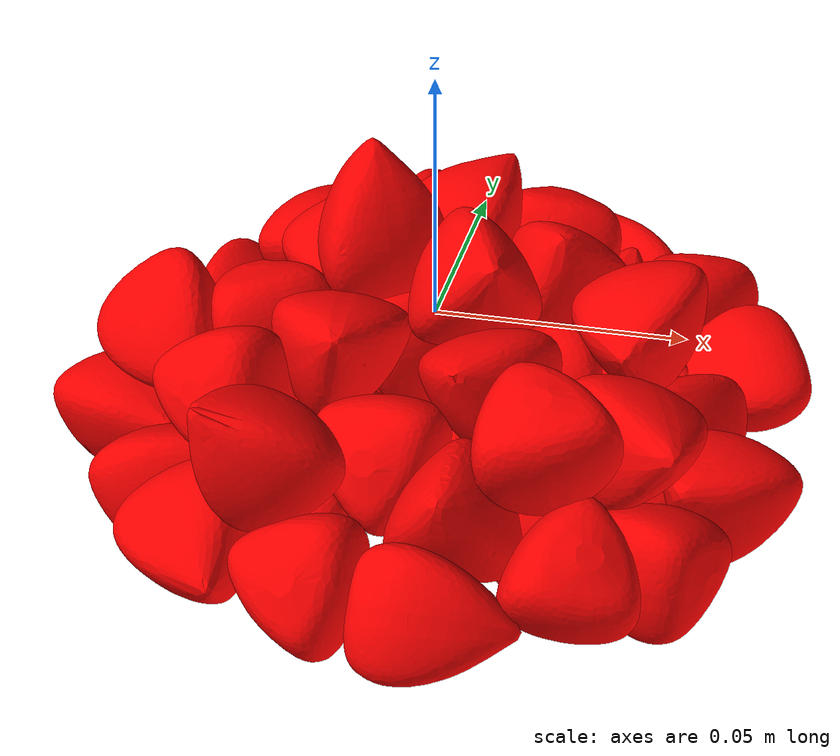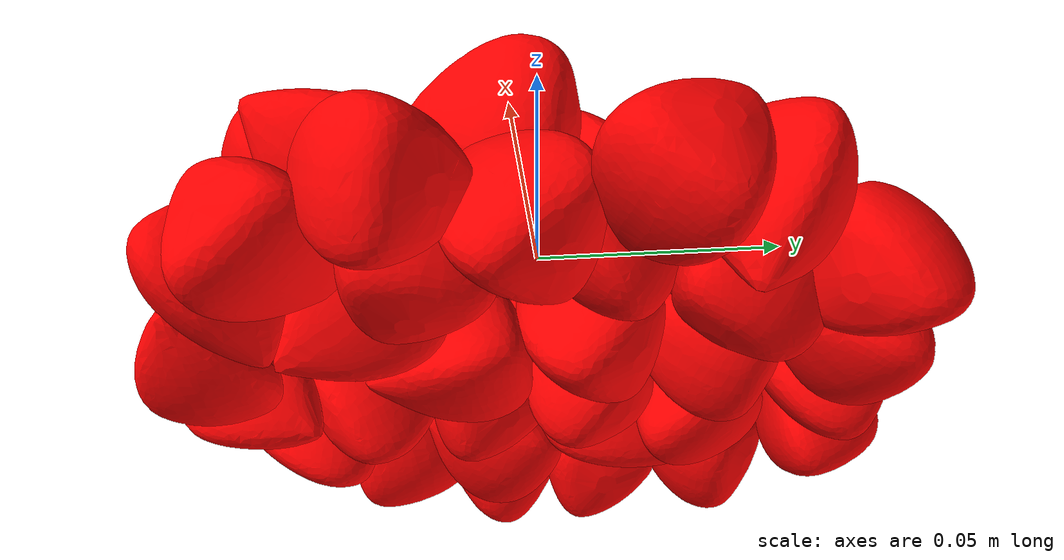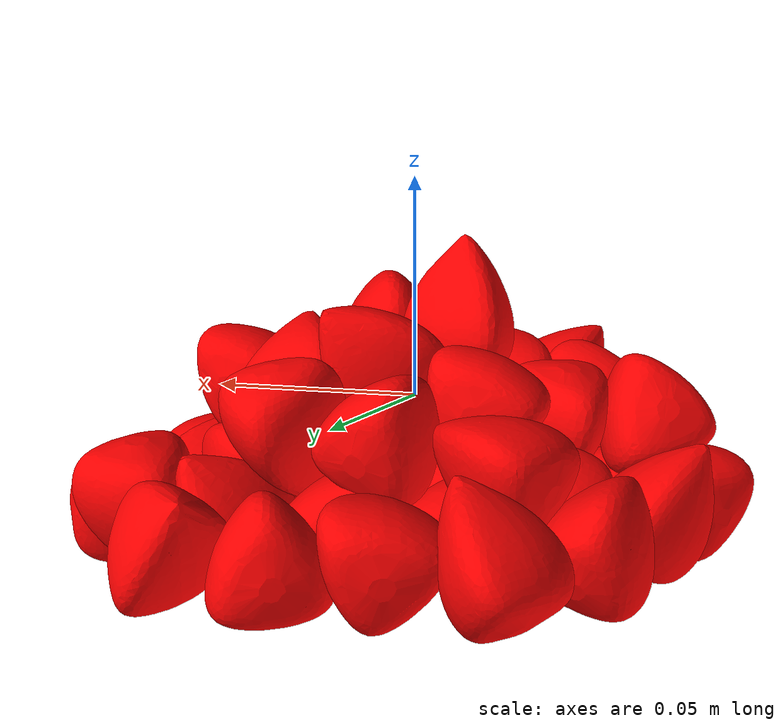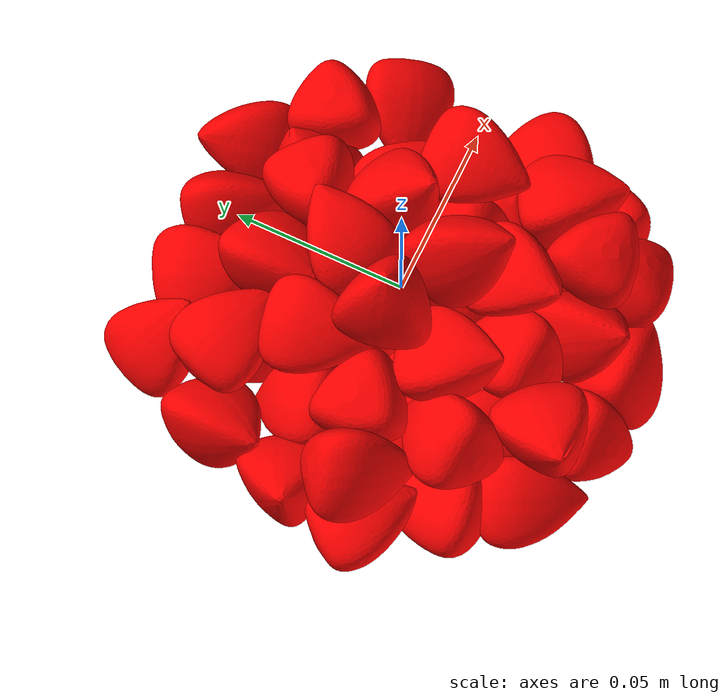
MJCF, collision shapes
<?xml version="1.0" ?>
<mujoco model="grain_buckwheat">
	<compiler meshdir="grain_buckwheat/meshes" texturedir="grain_buckwheat/textures" angle="radian" autolimits="true" balanceinertia="true" boundmass="0.000001" boundinertia="0.000001"/>
	<default>
		<default class="visual">
			<geom contype="0" conaffinity="0"/>
		</default>
		<default class="collision">
			<geom rgba="1.0 0.0 0.0 0.0"/>
		</default>
	</default>
	<asset>
		<mesh name="GrainBuckwheat036" file="obj/GrainBuckwheat036.obj" scale="1.0 1.0 1.0"/>
		<mesh name="GrainBuckwheat036_001" file="stl/GrainBuckwheat036_001.stl" scale="1.0 1.0 1.0"/>
		<mesh name="GrainBuckwheat040" file="obj/GrainBuckwheat040.obj" scale="1.0 1.0 1.0"/>
		<mesh name="GrainBuckwheat040_001" file="stl/GrainBuckwheat040_001.stl" scale="1.0 1.0 1.0"/>
		<mesh name="GrainBuckwheat041" file="obj/GrainBuckwheat041.obj" scale="1.0 1.0 1.0"/>
		<mesh name="GrainBuckwheat041_001" file="stl/GrainBuckwheat041_001.stl" scale="1.0 1.0 1.0"/>
		<mesh name="GrainBuckwheat017" file="obj/GrainBuckwheat017.obj" scale="1.0 1.0 1.0"/>
		<mesh name="GrainBuckwheat017_001" file="stl/GrainBuckwheat017_001.stl" scale="1.0 1.0 1.0"/>
		<mesh name="GrainBuckwheat049" file="obj/GrainBuckwheat049.obj" scale="1.0 1.0 1.0"/>
		<mesh name="GrainBuckwheat049_001" file="stl/GrainBuckwheat049_001.stl" scale="1.0 1.0 1.0"/>
		<mesh name="GrainBuckwheat024" file="obj/GrainBuckwheat024.obj" scale="1.0 1.0 1.0"/>
		<mesh name="GrainBuckwheat024_001" file="stl/GrainBuckwheat024_001.stl" scale="1.0 1.0 1.0"/>
		<mesh name="GrainBuckwheat051" file="obj/GrainBuckwheat051.obj" scale="1.0 1.0 1.0"/>
		<mesh name="GrainBuckwheat051_001" file="stl/GrainBuckwheat051_001.stl" scale="1.0 1.0 1.0"/>
		<mesh name="GrainBuckwheat019" file="obj/GrainBuckwheat019.obj" scale="1.0 1.0 1.0"/>
		<mesh name="GrainBuckwheat019_001" file="stl/GrainBuckwheat019_001.stl" scale="1.0 1.0 1.0"/>
		<mesh name="GrainBuckwheat042" file="obj/GrainBuckwheat042.obj" scale="1.0 1.0 1.0"/>
		<mesh name="GrainBuckwheat042_001" file="stl/GrainBuckwheat042_001.stl" scale="1.0 1.0 1.0"/>
		<mesh name="GrainBuckwheat021" file="obj/GrainBuckwheat021.obj" scale="1.0 1.0 1.0"/>
		<mesh name="GrainBuckwheat021_001" file="stl/GrainBuckwheat021_001.stl" scale="1.0 1.0 1.0"/>
		<mesh name="GrainBuckwheat032" file="obj/GrainBuckwheat032.obj" scale="1.0 1.0 1.0"/>
		<mesh name="GrainBuckwheat032_001" file="stl/GrainBuckwheat032_001.stl" scale="1.0 1.0 1.0"/>
		<mesh name="GrainBuckwheat014" file="obj/GrainBuckwheat014.obj" scale="1.0 1.0 1.0"/>
		<mesh name="GrainBuckwheat014_001" file="stl/GrainBuckwheat014_001.stl" scale="1.0 1.0 1.0"/>
		<mesh name="GrainBuckwheat035" file="obj/GrainBuckwheat035.obj" scale="1.0 1.0 1.0"/>
		<mesh name="GrainBuckwheat035_001" file="stl/GrainBuckwheat035_001.stl" scale="1.0 1.0 1.0"/>
		<mesh name="GrainBuckwheat004" file="obj/GrainBuckwheat004.obj" scale="1.0 1.0 1.0"/>
		<mesh name="GrainBuckwheat004_001" file="stl/GrainBuckwheat004_001.stl" scale="1.0 1.0 1.0"/>
		<mesh name="GrainBuckwheat001" file="obj/GrainBuckwheat001.obj" scale="1.0 1.0 1.0"/>
		<mesh name="GrainBuckwheat001_001" file="stl/GrainBuckwheat001_001.stl" scale="1.0 1.0 1.0"/>
		<mesh name="GrainBuckwheat047" file="obj/GrainBuckwheat047.obj" scale="1.0 1.0 1.0"/>
		<mesh name="GrainBuckwheat047_001" file="stl/GrainBuckwheat047_001.stl" scale="1.0 1.0 1.0"/>
		<mesh name="GrainBuckwheat015" file="obj/GrainBuckwheat015.obj" scale="1.0 1.0 1.0"/>
		<mesh name="GrainBuckwheat015_001" file="stl/GrainBuckwheat015_001.stl" scale="1.0 1.0 1.0"/>
		<mesh name="GrainBuckwheat038" file="obj/GrainBuckwheat038.obj" scale="1.0 1.0 1.0"/>
		<mesh name="GrainBuckwheat038_001" file="stl/GrainBuckwheat038_001.stl" scale="1.0 1.0 1.0"/>
		<mesh name="GrainBuckwheat045" file="obj/GrainBuckwheat045.obj" scale="1.0 1.0 1.0"/>
		<mesh name="GrainBuckwheat045_001" file="stl/GrainBuckwheat045_001.stl" scale="1.0 1.0 1.0"/>
		<mesh name="GrainBuckwheat050" file="obj/GrainBuckwheat050.obj" scale="1.0 1.0 1.0"/>
		<mesh name="GrainBuckwheat050_001" file="stl/GrainBuckwheat050_001.stl" scale="1.0 1.0 1.0"/>
		<mesh name="GrainBuckwheat009" file="obj/GrainBuckwheat009.obj" scale="1.0 1.0 1.0"/>
		<mesh name="GrainBuckwheat009_001" file="stl/GrainBuckwheat009_001.stl" scale="1.0 1.0 1.0"/>
		<mesh name="GrainBuckwheat006" file="obj/GrainBuckwheat006.obj" scale="1.0 1.0 1.0"/>
		<mesh name="GrainBuckwheat006_001" file="stl/GrainBuckwheat006_001.stl" scale="1.0 1.0 1.0"/>
		<mesh name="GrainBuckwheat048" file="obj/GrainBuckwheat048.obj" scale="1.0 1.0 1.0"/>
		<mesh name="GrainBuckwheat048_001" file="stl/GrainBuckwheat048_001.stl" scale="1.0 1.0 1.0"/>
		<mesh name="GrainBuckwheat011" file="obj/GrainBuckwheat011.obj" scale="1.0 1.0 1.0"/>
		<mesh name="GrainBuckwheat011_001" file="stl/GrainBuckwheat011_001.stl" scale="1.0 1.0 1.0"/>
		<mesh name="GrainBuckwheat005" file="obj/GrainBuckwheat005.obj" scale="1.0 1.0 1.0"/>
		<mesh name="GrainBuckwheat005_001" file="stl/GrainBuckwheat005_001.stl" scale="1.0 1.0 1.0"/>
		<mesh name="GrainBuckwheat008" file="obj/GrainBuckwheat008.obj" scale="1.0 1.0 1.0"/>
		<mesh name="GrainBuckwheat008_001" file="stl/GrainBuckwheat008_001.stl" scale="1.0 1.0 1.0"/>
		<mesh name="GrainBuckwheat037" file="obj/GrainBuckwheat037.obj" scale="1.0 1.0 1.0"/>
		<mesh name="GrainBuckwheat037_001" file="stl/GrainBuckwheat037_001.stl" scale="1.0 1.0 1.0"/>
		<mesh name="GrainBuckwheat039" file="obj/GrainBuckwheat039.obj" scale="1.0 1.0 1.0"/>
		<mesh name="GrainBuckwheat039_001" file="stl/GrainBuckwheat039_001.stl" scale="1.0 1.0 1.0"/>
		<mesh name="GrainBuckwheat023" file="obj/GrainBuckwheat023.obj" scale="1.0 1.0 1.0"/>
		<mesh name="GrainBuckwheat023_001" file="stl/GrainBuckwheat023_001.stl" scale="1.0 1.0 1.0"/>
		<mesh name="GrainBuckwheat018" file="obj/GrainBuckwheat018.obj" scale="1.0 1.0 1.0"/>
		<mesh name="GrainBuckwheat018_001" file="stl/GrainBuckwheat018_001.stl" scale="1.0 1.0 1.0"/>
		<mesh name="GrainBuckwheat002" file="obj/GrainBuckwheat002.obj" scale="1.0 1.0 1.0"/>
		<mesh name="GrainBuckwheat002_001" file="stl/GrainBuckwheat002_001.stl" scale="1.0 1.0 1.0"/>
		<mesh name="GrainBuckwheat025" file="obj/GrainBuckwheat025.obj" scale="1.0 1.0 1.0"/>
		<mesh name="GrainBuckwheat025_001" file="stl/GrainBuckwheat025_001.stl" scale="1.0 1.0 1.0"/>
		<mesh name="GrainBuckwheat043" file="obj/GrainBuckwheat043.obj" scale="1.0 1.0 1.0"/>
		<mesh name="GrainBuckwheat043_001" file="stl/GrainBuckwheat043_001.stl" scale="1.0 1.0 1.0"/>
		<mesh name="GrainBuckwheat031" file="obj/GrainBuckwheat031.obj" scale="1.0 1.0 1.0"/>
		<mesh name="GrainBuckwheat031_001" file="stl/GrainBuckwheat031_001.stl" scale="1.0 1.0 1.0"/>
		<mesh name="GrainBuckwheat003" file="obj/GrainBuckwheat003.obj" scale="1.0 1.0 1.0"/>
		<mesh name="GrainBuckwheat003_001" file="stl/GrainBuckwheat003_001.stl" scale="1.0 1.0 1.0"/>
		<mesh name="GrainBuckwheat016" file="obj/GrainBuckwheat016.obj" scale="1.0 1.0 1.0"/>
		<mesh name="GrainBuckwheat016_001" file="stl/GrainBuckwheat016_001.stl" scale="1.0 1.0 1.0"/>
		<mesh name="GrainBuckwheat007" file="obj/GrainBuckwheat007.obj" scale="1.0 1.0 1.0"/>
		<mesh name="GrainBuckwheat007_001" file="stl/GrainBuckwheat007_001.stl" scale="1.0 1.0 1.0"/>
		<mesh name="GrainBuckwheat022" file="obj/GrainBuckwheat022.obj" scale="1.0 1.0 1.0"/>
		<mesh name="GrainBuckwheat022_001" file="stl/GrainBuckwheat022_001.stl" scale="1.0 1.0 1.0"/>
		<mesh name="GrainBuckwheat013" file="obj/GrainBuckwheat013.obj" scale="1.0 1.0 1.0"/>
		<mesh name="GrainBuckwheat013_001" file="stl/GrainBuckwheat013_001.stl" scale="1.0 1.0 1.0"/>
		<mesh name="GrainBuckwheat028" file="obj/GrainBuckwheat028.obj" scale="1.0 1.0 1.0"/>
		<mesh name="GrainBuckwheat028_001" file="stl/GrainBuckwheat028_001.stl" scale="1.0 1.0 1.0"/>
		<mesh name="GrainBuckwheat026" file="obj/GrainBuckwheat026.obj" scale="1.0 1.0 1.0"/>
		<mesh name="GrainBuckwheat026_001" file="stl/GrainBuckwheat026_001.stl" scale="1.0 1.0 1.0"/>
		<mesh name="GrainBuckwheat010" file="obj/GrainBuckwheat010.obj" scale="1.0 1.0 1.0"/>
		<mesh name="GrainBuckwheat010_001" file="stl/GrainBuckwheat010_001.stl" scale="1.0 1.0 1.0"/>
		<mesh name="GrainBuckwheat033" file="obj/GrainBuckwheat033.obj" scale="1.0 1.0 1.0"/>
		<mesh name="GrainBuckwheat033_001" file="stl/GrainBuckwheat033_001.stl" scale="1.0 1.0 1.0"/>
		<mesh name="GrainBuckwheat044" file="obj/GrainBuckwheat044.obj" scale="1.0 1.0 1.0"/>
		<mesh name="GrainBuckwheat044_001" file="stl/GrainBuckwheat044_001.stl" scale="1.0 1.0 1.0"/>
		<mesh name="GrainBuckwheat046" file="obj/GrainBuckwheat046.obj" scale="1.0 1.0 1.0"/>
		<mesh name="GrainBuckwheat046_001" file="stl/GrainBuckwheat046_001.stl" scale="1.0 1.0 1.0"/>
		<mesh name="GrainBuckwheat012" file="obj/GrainBuckwheat012.obj" scale="1.0 1.0 1.0"/>
		<mesh name="GrainBuckwheat012_001" file="stl/GrainBuckwheat012_001.stl" scale="1.0 1.0 1.0"/>
		<mesh name="GrainBuckwheat030" file="obj/GrainBuckwheat030.obj" scale="1.0 1.0 1.0"/>
		<mesh name="GrainBuckwheat030_001" file="stl/GrainBuckwheat030_001.stl" scale="1.0 1.0 1.0"/>
		<mesh name="GrainBuckwheat020" file="obj/GrainBuckwheat020.obj" scale="1.0 1.0 1.0"/>
		<mesh name="GrainBuckwheat020_001" file="stl/GrainBuckwheat020_001.stl" scale="1.0 1.0 1.0"/>
		<mesh name="GrainBuckwheat029" file="obj/GrainBuckwheat029.obj" scale="1.0 1.0 1.0"/>
		<mesh name="GrainBuckwheat029_001" file="stl/GrainBuckwheat029_001.stl" scale="1.0 1.0 1.0"/>
		<mesh name="GrainBuckwheat034" file="obj/GrainBuckwheat034.obj" scale="1.0 1.0 1.0"/>
		<mesh name="GrainBuckwheat034_001" file="stl/GrainBuckwheat034_001.stl" scale="1.0 1.0 1.0"/>
		<mesh name="GrainBuckwheat027" file="obj/GrainBuckwheat027.obj" scale="1.0 1.0 1.0"/>
		<mesh name="GrainBuckwheat027_001" file="stl/GrainBuckwheat027_001.stl" scale="1.0 1.0 1.0"/>
		<material name="M_GrainBuckwheat051_035" texture="T_GrainBuckwheat051"/>
		<material name="M_GrainBuckwheat051_039" texture="T_GrainBuckwheat051"/>
		<material name="M_GrainBuckwheat051_040" texture="T_GrainBuckwheat051"/>
		<material name="M_GrainBuckwheat051_016" texture="T_GrainBuckwheat051"/>
		<material name="M_GrainBuckwheat051_048" texture="T_GrainBuckwheat051"/>
		<material name="M_GrainBuckwheat051_023" texture="T_GrainBuckwheat051"/>
		<material name="M_GrainBuckwheat051_050" texture="T_GrainBuckwheat051"/>
		<material name="M_GrainBuckwheat051_018" texture="T_GrainBuckwheat051"/>
		<material name="M_GrainBuckwheat051_041" texture="T_GrainBuckwheat051"/>
		<material name="M_GrainBuckwheat051_020" texture="T_GrainBuckwheat051"/>
		<material name="M_GrainBuckwheat051_031" texture="T_GrainBuckwheat051"/>
		<material name="M_GrainBuckwheat051_013" texture="T_GrainBuckwheat051"/>
		<material name="M_GrainBuckwheat051_034" texture="T_GrainBuckwheat051"/>
		<material name="M_GrainBuckwheat051_003" texture="T_GrainBuckwheat051"/>
		<material name="M_GrainBuckwheat051" texture="T_GrainBuckwheat051"/>
		<material name="M_GrainBuckwheat051_046" texture="T_GrainBuckwheat051"/>
		<material name="M_GrainBuckwheat051_014" texture="T_GrainBuckwheat051"/>
		<material name="M_GrainBuckwheat051_037" texture="T_GrainBuckwheat051"/>
		<material name="M_GrainBuckwheat051_044" texture="T_GrainBuckwheat051"/>
		<material name="M_GrainBuckwheat051_049" texture="T_GrainBuckwheat051"/>
		<material name="M_GrainBuckwheat051_008" texture="T_GrainBuckwheat051"/>
		<material name="M_GrainBuckwheat051_005" texture="T_GrainBuckwheat051"/>
		<material name="M_GrainBuckwheat051_047" texture="T_GrainBuckwheat051"/>
		<material name="M_GrainBuckwheat051_010" texture="T_GrainBuckwheat051"/>
		<material name="M_GrainBuckwheat051_004" texture="T_GrainBuckwheat051"/>
		<material name="M_GrainBuckwheat051_007" texture="T_GrainBuckwheat051"/>
		<material name="M_GrainBuckwheat051_036" texture="T_GrainBuckwheat051"/>
		<material name="M_GrainBuckwheat051_038" texture="T_GrainBuckwheat051"/>
		<material name="M_GrainBuckwheat051_022" texture="T_GrainBuckwheat051"/>
		<material name="M_GrainBuckwheat051_017" texture="T_GrainBuckwheat051"/>
		<material name="M_GrainBuckwheat051_001" texture="T_GrainBuckwheat051"/>
		<material name="M_GrainBuckwheat051_024" texture="T_GrainBuckwheat051"/>
		<material name="M_GrainBuckwheat051_042" texture="T_GrainBuckwheat051"/>
		<material name="M_GrainBuckwheat051_030" texture="T_GrainBuckwheat051"/>
		<material name="M_GrainBuckwheat051_002" texture="T_GrainBuckwheat051"/>
		<material name="M_GrainBuckwheat051_015" texture="T_GrainBuckwheat051"/>
		<material name="M_GrainBuckwheat051_006" texture="T_GrainBuckwheat051"/>
		<material name="M_GrainBuckwheat051_021" texture="T_GrainBuckwheat051"/>
		<material name="M_GrainBuckwheat051_012" texture="T_GrainBuckwheat051"/>
		<material name="M_GrainBuckwheat051_027" texture="T_GrainBuckwheat051"/>
		<material name="M_GrainBuckwheat051_025" texture="T_GrainBuckwheat051"/>
		<material name="M_GrainBuckwheat051_009" texture="T_GrainBuckwheat051"/>
		<material name="M_GrainBuckwheat051_032" texture="T_GrainBuckwheat051"/>
		<material name="M_GrainBuckwheat051_043" texture="T_GrainBuckwheat051"/>
		<material name="M_GrainBuckwheat051_045" texture="T_GrainBuckwheat051"/>
		<material name="M_GrainBuckwheat051_011" texture="T_GrainBuckwheat051"/>
		<material name="M_GrainBuckwheat051_029" texture="T_GrainBuckwheat051"/>
		<material name="M_GrainBuckwheat051_019" texture="T_GrainBuckwheat051"/>
		<material name="M_GrainBuckwheat051_028" texture="T_GrainBuckwheat051"/>
		<material name="M_GrainBuckwheat051_033" texture="T_GrainBuckwheat051"/>
		<material name="M_GrainBuckwheat051_026" texture="T_GrainBuckwheat051"/>
		<texture name="T_GrainBuckwheat051" type="2d" file="T_GrainBuckwheat051.png"/>
	</asset>
	<worldbody>
		<body name="grain_buckwheat" pos="0.0 0.0 0.0" quat="1.0 0.0 0.0 0.0">
			<body name="grain_buckwheat036" pos="0.0 0.0 0.0" quat="1.0 0.0 0.0 0.0">
				<inertial mass="0.008105949498713017" pos="0.002045366680249572 0.017098860815167427 0.009588130749762058" quat="0.6063151955604553 -0.2742525339126587 0.6036592125892639 -0.43904781341552734" diaginertia="5.207304525356449e-07 3.7398126551124733e-06 3.7558399981207913e-06"/>
				<geom name="GrainBuckwheat036" type="mesh" pos="0.0 0.0 0.0" quat="1.0 0.0 0.0 0.0" mesh="GrainBuckwheat036" material="M_GrainBuckwheat051_035" class="visual"/>
				<geom name="GrainBuckwheat036_001" type="mesh" pos="0.0 0.0 0.0" quat="1.0 0.0 0.0 0.0" mesh="GrainBuckwheat036_001" class="collision"/>
			</body>
			<body name="grain_buckwheat041" pos="0.0 0.0 0.0" quat="1.0 0.0 0.0 0.0">
				<inertial mass="0.008105945773422718" pos="0.016430174931883812 -0.026166731491684914 0.0004604462010320276" quat="-0.15355660021305084 0.4604199528694153 0.822814404964447 -0.29565227031707764" diaginertia="5.648936962643347e-07 8.276318112621084e-06 8.357154911209363e-06"/>
				<geom name="GrainBuckwheat041" type="mesh" pos="0.0 0.0 0.0" quat="1.0 0.0 0.0 0.0" mesh="GrainBuckwheat041" material="M_GrainBuckwheat051_040" class="visual"/>
				<geom name="GrainBuckwheat041_001" type="mesh" pos="0.0 0.0 0.0" quat="1.0 0.0 0.0 0.0" mesh="GrainBuckwheat041_001" class="collision"/>
			</body>
			<body name="grain_buckwheat049" pos="0.0 0.0 0.0" quat="1.0 0.0 0.0 0.0">
				<inertial mass="0.00810594018548727" pos="0.043939653784036636 -0.029685627669095993 -0.005284047685563564" quat="0.9296882748603821 -0.2184031456708908 0.11647018045186996 -0.2727901041507721" diaginertia="5.380534275900573e-07 2.359003156016115e-05 2.3629507268196903e-05"/>
				<geom name="GrainBuckwheat049" type="mesh" pos="0.0 0.0 0.0" quat="1.0 0.0 0.0 0.0" mesh="GrainBuckwheat049" material="M_GrainBuckwheat051_048" class="visual"/>
				<geom name="GrainBuckwheat049_001" type="mesh" pos="0.0 0.0 0.0" quat="1.0 0.0 0.0 0.0" mesh="GrainBuckwheat049_001" class="collision"/>
			</body>
			<body name="grain_buckwheat051" pos="0.0 0.0 0.0" quat="1.0 0.0 0.0 0.0">
				<inertial mass="0.008105947636067867" pos="-0.052226465195417404 -0.009263415820896626 -0.004320839885622263" quat="0.9737453460693359 0.20652884244918823 -0.021893210709095 0.09320162236690521" diaginertia="6.010953370605421e-07 2.347497684240807e-05 2.355565629841294e-05"/>
				<geom name="GrainBuckwheat051" type="mesh" pos="0.0 0.0 0.0" quat="1.0 0.0 0.0 0.0" mesh="GrainBuckwheat051" material="M_GrainBuckwheat051_050" class="visual"/>
				<geom name="GrainBuckwheat051_001" type="mesh" pos="0.0 0.0 0.0" quat="1.0 0.0 0.0 0.0" mesh="GrainBuckwheat051_001" class="collision"/>
			</body>
			<body name="grain_buckwheat042" pos="0.0 0.0 0.0" quat="1.0 0.0 0.0 0.0">
				<inertial mass="0.00810594018548727" pos="-0.006528912577778101 0.037082236260175705 -0.002959451638162136" quat="0.5814504027366638 0.2770678400993347 0.38417452573776245 0.6614822745323181" diaginertia="5.237760092313692e-07 1.2138609235989861e-05 1.2181763850094285e-05"/>
				<geom name="GrainBuckwheat042" type="mesh" pos="0.0 0.0 0.0" quat="1.0 0.0 0.0 0.0" mesh="GrainBuckwheat042" material="M_GrainBuckwheat051_041" class="visual"/>
				<geom name="GrainBuckwheat042_001" type="mesh" pos="0.0 0.0 0.0" quat="1.0 0.0 0.0 0.0" mesh="GrainBuckwheat042_001" class="collision"/>
			</body>
			<body name="grain_buckwheat032" pos="0.0 0.0 0.0" quat="1.0 0.0 0.0 0.0">
				<inertial mass="0.00810594204813242" pos="-0.010173884220421314 -0.06007910519838333 -0.024026038125157356" quat="0.5690904259681702 -0.3139033615589142 0.5873298048973083 -0.48233234882354736" diaginertia="5.687700195267098e-07 3.5309272789163515e-05 3.5393371945247054e-05"/>
				<geom name="GrainBuckwheat032" type="mesh" pos="0.0 0.0 0.0" quat="1.0 0.0 0.0 0.0" mesh="GrainBuckwheat032" material="M_GrainBuckwheat051_031" class="visual"/>
				<geom name="GrainBuckwheat032_001" type="mesh" pos="0.0 0.0 0.0" quat="1.0 0.0 0.0 0.0" mesh="GrainBuckwheat032_001" class="collision"/>
			</body>
			<body name="grain_buckwheat035" pos="0.0 0.0 0.0" quat="1.0 0.0 0.0 0.0">
				<inertial mass="0.008105935528874397" pos="-0.03301561623811722 -0.004829749930649996 -0.004289811477065086" quat="0.7800877690315247 0.6182864904403687 -0.005780127365142107 0.09566345065832138" diaginertia="6.137258310445759e-07 9.679593858891167e-06 9.772891644388437e-06"/>
				<geom name="GrainBuckwheat035" type="mesh" pos="0.0 0.0 0.0" quat="1.0 0.0 0.0 0.0" mesh="GrainBuckwheat035" material="M_GrainBuckwheat051_034" class="visual"/>
				<geom name="GrainBuckwheat035_001" type="mesh" pos="0.0 0.0 0.0" quat="1.0 0.0 0.0 0.0" mesh="GrainBuckwheat035_001" class="collision"/>
			</body>
			<body name="grain_buckwheat001" pos="0.0 0.0 0.0" quat="1.0 0.0 0.0 0.0">
				<inertial mass="0.00810594018548727" pos="-0.05053158104419708 0.03392508998513222 -0.022955160588026047" quat="0.893017590045929 -0.3008437156677246 -0.08914189785718918 -0.32259324193000793" diaginertia="5.945461225564941e-07 3.482808460830711e-05 3.489282971713692e-05"/>
				<geom name="GrainBuckwheat001" type="mesh" pos="0.0 0.0 0.0" quat="1.0 0.0 0.0 0.0" mesh="GrainBuckwheat001" material="M_GrainBuckwheat051" class="visual"/>
				<geom name="GrainBuckwheat001_001" type="mesh" pos="0.0 0.0 0.0" quat="1.0 0.0 0.0 0.0" mesh="GrainBuckwheat001_001" class="collision"/>
			</body>
			<body name="grain_buckwheat015" pos="0.0 0.0 0.0" quat="1.0 0.0 0.0 0.0">
				<inertial mass="0.00810594204813242" pos="0.050654370337724686 0.0023094387724995613 -0.02323511615395546" quat="0.8631618618965149 -0.45685744285583496 0.1787554770708084 0.11949623376131058" diaginertia="5.832903866576089e-07 2.5756646209629253e-05 2.5814631953835487e-05"/>
				<geom name="GrainBuckwheat015" type="mesh" pos="0.0 0.0 0.0" quat="1.0 0.0 0.0 0.0" mesh="GrainBuckwheat015" material="M_GrainBuckwheat051_014" class="visual"/>
				<geom name="GrainBuckwheat015_001" type="mesh" pos="0.0 0.0 0.0" quat="1.0 0.0 0.0 0.0" mesh="GrainBuckwheat015_001" class="collision"/>
			</body>
			<body name="grain_buckwheat045" pos="0.0 0.0 0.0" quat="1.0 0.0 0.0 0.0">
				<inertial mass="0.008105941116809845" pos="0.02266024611890316 0.012555936351418495 0.002754347398877144" quat="0.8569220304489136 -0.44810760021209717 -0.1630532145500183 0.19569844007492065" diaginertia="5.934494424764125e-07 6.0074871726101264e-06 6.120737907622242e-06"/>
				<geom name="GrainBuckwheat045" type="mesh" pos="0.0 0.0 0.0" quat="1.0 0.0 0.0 0.0" mesh="GrainBuckwheat045" material="M_GrainBuckwheat051_044" class="visual"/>
				<geom name="GrainBuckwheat045_001" type="mesh" pos="0.0 0.0 0.0" quat="1.0 0.0 0.0 0.0" mesh="GrainBuckwheat045_001" class="collision"/>
			</body>
			<body name="grain_buckwheat009" pos="0.0 0.0 0.0" quat="1.0 0.0 0.0 0.0">
				<inertial mass="0.008105946704745293" pos="-0.02227836102247238 0.03225889801979065 -0.02443511411547661" quat="0.09429944306612015 0.49901145696640015 0.7722570896148682 -0.3817252218723297" diaginertia="5.447193416330265e-07 1.7869906514533795e-05 1.7900420061778277e-05"/>
				<geom name="GrainBuckwheat009" type="mesh" pos="0.0 0.0 0.0" quat="1.0 0.0 0.0 0.0" mesh="GrainBuckwheat009" material="M_GrainBuckwheat051_008" class="visual"/>
				<geom name="GrainBuckwheat009_001" type="mesh" pos="0.0 0.0 0.0" quat="1.0 0.0 0.0 0.0" mesh="GrainBuckwheat009_001" class="collision"/>
			</body>
			<body name="grain_buckwheat048" pos="0.0 0.0 0.0" quat="1.0 0.0 0.0 0.0">
				<inertial mass="0.00810594204813242" pos="-0.019858401268720627 -0.05260501429438591 -0.0027104404289275408" quat="-0.5010566711425781 0.26902279257774353 -0.42457982897758484 0.7044863104820251" diaginertia="5.65483276204759e-07 2.6224735847790726e-05 2.630334893183317e-05"/>
				<geom name="GrainBuckwheat048" type="mesh" pos="0.0 0.0 0.0" quat="1.0 0.0 0.0 0.0" mesh="GrainBuckwheat048" material="M_GrainBuckwheat051_047" class="visual"/>
				<geom name="GrainBuckwheat048_001" type="mesh" pos="0.0 0.0 0.0" quat="1.0 0.0 0.0 0.0" mesh="GrainBuckwheat048_001" class="collision"/>
			</body>
			<body name="grain_buckwheat005" pos="0.0 0.0 0.0" quat="1.0 0.0 0.0 0.0">
				<inertial mass="0.008105922490358353" pos="0.030763311311602592 0.06178424134850502 -0.023084290325641632" quat="-0.4309788942337036 0.3210374116897583 -0.2352829873561859 0.8098358511924744" diaginertia="5.940332812315319e-07 4.344043190940283e-05 4.35507608926855e-05"/>
				<geom name="GrainBuckwheat005" type="mesh" pos="0.0 0.0 0.0" quat="1.0 0.0 0.0 0.0" mesh="GrainBuckwheat005" material="M_GrainBuckwheat051_004" class="visual"/>
				<geom name="GrainBuckwheat005_001" type="mesh" pos="0.0 0.0 0.0" quat="1.0 0.0 0.0 0.0" mesh="GrainBuckwheat005_001" class="collision"/>
			</body>
			<body name="grain_buckwheat037" pos="0.0 0.0 0.0" quat="1.0 0.0 0.0 0.0">
				<inertial mass="0.008105939254164696" pos="-0.032763779163360596 -0.03056233748793602 -0.004140632692724466" quat="0.7719375491142273 -0.5172057747840881 -0.24398639798164368 0.27763521671295166" diaginertia="5.498241080204025e-07 1.6984567992039956e-05 1.700752545730211e-05"/>
				<geom name="GrainBuckwheat037" type="mesh" pos="0.0 0.0 0.0" quat="1.0 0.0 0.0 0.0" mesh="GrainBuckwheat037" material="M_GrainBuckwheat051_036" class="visual"/>
				<geom name="GrainBuckwheat037_001" type="mesh" pos="0.0 0.0 0.0" quat="1.0 0.0 0.0 0.0" mesh="GrainBuckwheat037_001" class="collision"/>
			</body>
			<body name="grain_buckwheat023" pos="0.0 0.0 0.0" quat="1.0 0.0 0.0 0.0">
				<inertial mass="0.008105947636067867" pos="-0.04523541033267975 -0.03564969450235367 -0.02306240238249302" quat="0.9207065105438232 -0.13086985051631927 -0.24159544706344604 0.2771357297897339" diaginertia="5.364595949686191e-07 3.176082464051433e-05 3.1820862204767764e-05"/>
				<geom name="GrainBuckwheat023" type="mesh" pos="0.0 0.0 0.0" quat="1.0 0.0 0.0 0.0" mesh="GrainBuckwheat023" material="M_GrainBuckwheat051_022" class="visual"/>
				<geom name="GrainBuckwheat023_001" type="mesh" pos="0.0 0.0 0.0" quat="1.0 0.0 0.0 0.0" mesh="GrainBuckwheat023_001" class="collision"/>
			</body>
			<body name="grain_buckwheat002" pos="0.0 0.0 0.0" quat="1.0 0.0 0.0 0.0">
				<inertial mass="0.008105944842100143" pos="-0.03653108328580856 0.0581178292632103 -0.022487230598926544" quat="-0.3808794319629669 0.779645562171936 -0.33736351132392883 0.36506104469299316" diaginertia="5.454248821479268e-07 4.2848652810789645e-05 4.291586083127186e-05"/>
				<geom name="GrainBuckwheat002" type="mesh" pos="0.0 0.0 0.0" quat="1.0 0.0 0.0 0.0" mesh="GrainBuckwheat002" material="M_GrainBuckwheat051_001" class="visual"/>
				<geom name="GrainBuckwheat002_001" type="mesh" pos="0.0 0.0 0.0" quat="1.0 0.0 0.0 0.0" mesh="GrainBuckwheat002_001" class="collision"/>
			</body>
			<body name="grain_buckwheat043" pos="0.0 0.0 0.0" quat="1.0 0.0 0.0 0.0">
				<inertial mass="0.008105941116809845" pos="-0.02209833450615406 0.01766124926507473 0.0019577140919864178" quat="0.9409516453742981 -0.04389763996005058 0.05021475628018379 -0.3319058120250702" diaginertia="5.639479923047475e-07 7.074228960846085e-06 7.115884727681987e-06"/>
				<geom name="GrainBuckwheat043" type="mesh" pos="0.0 0.0 0.0" quat="1.0 0.0 0.0 0.0" mesh="GrainBuckwheat043" material="M_GrainBuckwheat051_042" class="visual"/>
				<geom name="GrainBuckwheat043_001" type="mesh" pos="0.0 0.0 0.0" quat="1.0 0.0 0.0 0.0" mesh="GrainBuckwheat043_001" class="collision"/>
			</body>
			<body name="grain_buckwheat003" pos="0.0 0.0 0.0" quat="1.0 0.0 0.0 0.0">
				<inertial mass="0.008105945773422718" pos="-0.013117169961333275 0.05731106176972389 -0.022242994979023933" quat="-0.17476308345794678 0.7577271461486816 -0.5200868844985962 0.3532945513725281" diaginertia="5.109791914037487e-07 3.261993333580904e-05 3.264652332291007e-05"/>
				<geom name="GrainBuckwheat003" type="mesh" pos="0.0 0.0 0.0" quat="1.0 0.0 0.0 0.0" mesh="GrainBuckwheat003" material="M_GrainBuckwheat051_002" class="visual"/>
				<geom name="GrainBuckwheat003_001" type="mesh" pos="0.0 0.0 0.0" quat="1.0 0.0 0.0 0.0" mesh="GrainBuckwheat003_001" class="collision"/>
			</body>
			<body name="grain_buckwheat007" pos="0.0 0.0 0.0" quat="1.0 0.0 0.0 0.0">
				<inertial mass="0.008105935528874397" pos="0.028174228966236115 0.03923295438289642 -0.022794509306550026" quat="0.7116689085960388 0.5070321559906006 0.44268786907196045 0.20117956399917603" diaginertia="6.006842454553407e-07 2.3632483134861104e-05 2.3731105102342553e-05"/>
				<geom name="GrainBuckwheat007" type="mesh" pos="0.0 0.0 0.0" quat="1.0 0.0 0.0 0.0" mesh="GrainBuckwheat007" material="M_GrainBuckwheat051_006" class="visual"/>
				<geom name="GrainBuckwheat007_001" type="mesh" pos="0.0 0.0 0.0" quat="1.0 0.0 0.0 0.0" mesh="GrainBuckwheat007_001" class="collision"/>
			</body>
			<body name="grain_buckwheat013" pos="0.0 0.0 0.0" quat="1.0 0.0 0.0 0.0">
				<inertial mass="0.008105939254164696" pos="0.03355750814080238 0.015724893659353256 -0.017061349004507065" quat="0.9089505076408386 -0.2932407855987549 0.14590273797512054 0.25793638825416565" diaginertia="6.00940609274403e-07 1.4017438843438867e-05 1.4084047506912611e-05"/>
				<geom name="GrainBuckwheat013" type="mesh" pos="0.0 0.0 0.0" quat="1.0 0.0 0.0 0.0" mesh="GrainBuckwheat013" material="M_GrainBuckwheat051_012" class="visual"/>
				<geom name="GrainBuckwheat013_001" type="mesh" pos="0.0 0.0 0.0" quat="1.0 0.0 0.0 0.0" mesh="GrainBuckwheat013_001" class="collision"/>
			</body>
			<body name="grain_buckwheat026" pos="0.0 0.0 0.0" quat="1.0 0.0 0.0 0.0">
				<inertial mass="0.008105948567390442" pos="0.04998636618256569 -0.040227849036455154 -0.024435097351670265" quat="0.908433735370636 0.1976117491722107 0.11959397047758102 -0.34841784834861755" diaginertia="5.239398319645261e-07 3.879645373672247e-05 3.882061719195917e-05"/>
				<geom name="GrainBuckwheat026" type="mesh" pos="0.0 0.0 0.0" quat="1.0 0.0 0.0 0.0" mesh="GrainBuckwheat026" material="M_GrainBuckwheat051_025" class="visual"/>
				<geom name="GrainBuckwheat026_001" type="mesh" pos="0.0 0.0 0.0" quat="1.0 0.0 0.0 0.0" mesh="GrainBuckwheat026_001" class="collision"/>
			</body>
			<body name="grain_buckwheat033" pos="0.0 0.0 0.0" quat="1.0 0.0 0.0 0.0">
				<inertial mass="0.008105933666229248" pos="-0.034720759838819504 -0.05245469510555267 -0.023245565593242645" quat="0.01208925899118185 0.8707597255706787 0.44674602150917053 0.20505930483341217" diaginertia="5.9566104937403e-07 3.698635191540234e-05 3.7047226214781404e-05"/>
				<geom name="GrainBuckwheat033" type="mesh" pos="0.0 0.0 0.0" quat="1.0 0.0 0.0 0.0" mesh="GrainBuckwheat033" material="M_GrainBuckwheat051_032" class="visual"/>
				<geom name="GrainBuckwheat033_001" type="mesh" pos="0.0 0.0 0.0" quat="1.0 0.0 0.0 0.0" mesh="GrainBuckwheat033_001" class="collision"/>
			</body>
			<body name="grain_buckwheat046" pos="0.0 0.0 0.0" quat="1.0 0.0 0.0 0.0">
				<inertial mass="0.008105946704745293" pos="0.017504576593637466 0.03517335280776024 -0.0018324489938095212" quat="-0.3802824914455414 0.3641248047351837 -0.5570316910743713 0.6422725915908813" diaginertia="5.833539375998953e-07 1.3056818715995178e-05 1.3156811291992199e-05"/>
				<geom name="GrainBuckwheat046" type="mesh" pos="0.0 0.0 0.0" quat="1.0 0.0 0.0 0.0" mesh="GrainBuckwheat046" material="M_GrainBuckwheat051_045" class="visual"/>
				<geom name="GrainBuckwheat046_001" type="mesh" pos="0.0 0.0 0.0" quat="1.0 0.0 0.0 0.0" mesh="GrainBuckwheat046_001" class="collision"/>
			</body>
			<body name="grain_buckwheat030" pos="0.0 0.0 0.0" quat="1.0 0.0 0.0 0.0">
				<inertial mass="0.008105923421680927" pos="0.03629881143569946 -0.05309285968542099 -0.02176724001765251" quat="0.6497764587402344 -0.5874162316322327 0.4348844289779663 -0.20882579684257507" diaginertia="5.858936447111773e-07 3.7886693462496623e-05 3.798663601628505e-05"/>
				<geom name="GrainBuckwheat030" type="mesh" pos="0.0 0.0 0.0" quat="1.0 0.0 0.0 0.0" mesh="GrainBuckwheat030" material="M_GrainBuckwheat051_029" class="visual"/>
				<geom name="GrainBuckwheat030_001" type="mesh" pos="0.0 0.0 0.0" quat="1.0 0.0 0.0 0.0" mesh="GrainBuckwheat030_001" class="collision"/>
			</body>
			<body name="grain_buckwheat029" pos="0.0 0.0 0.0" quat="1.0 0.0 0.0 0.0">
				<inertial mass="0.008105949498713017" pos="0.014344245195388794 -0.047696802765131 -0.015047436580061913" quat="0.3847382366657257 0.46307963132858276 0.4333624541759491 0.6706196665763855" diaginertia="5.716344162465248e-07 2.2472377168014646e-05 2.25625881284941e-05"/>
				<geom name="GrainBuckwheat029" type="mesh" pos="0.0 0.0 0.0" quat="1.0 0.0 0.0 0.0" mesh="GrainBuckwheat029" material="M_GrainBuckwheat051_028" class="visual"/>
				<geom name="GrainBuckwheat029_001" type="mesh" pos="0.0 0.0 0.0" quat="1.0 0.0 0.0 0.0" mesh="GrainBuckwheat029_001" class="collision"/>
			</body>
			<body name="grain_buckwheat027" pos="0.0 0.0 0.0" quat="1.0 0.0 0.0 0.0">
				<inertial mass="0.008105937391519547" pos="-0.004479730501770973 -0.0012996743898838758 -0.005457277409732342" quat="-0.47670912742614746 0.7298496961593628 0.3466566801071167 0.3462614417076111" diaginertia="5.612605491478462e-07 9.708452353152097e-07 1.0217077033303212e-06"/>
				<geom name="GrainBuckwheat027" type="mesh" pos="0.0 0.0 0.0" quat="1.0 0.0 0.0 0.0" mesh="GrainBuckwheat027" material="M_GrainBuckwheat051_026" class="visual"/>
				<geom name="GrainBuckwheat027_001" type="mesh" pos="0.0 0.0 0.0" quat="1.0 0.0 0.0 0.0" mesh="GrainBuckwheat027_001" class="collision"/>
			</body>
			<body name="grain_buckwheat040" pos="0.0 0.0 0.0" quat="1.0 0.0 0.0 0.0">
				<inertial mass="0.008105943910777569" pos="-0.011808747425675392 -0.0011289224494248629 0.017613405361771584" quat="-0.29635703563690186 0.37353256344795227 0.5043588280677795 0.7199084162712097" diaginertia="5.374038209993159e-07 4.230371814628597e-06 4.2612964534782805e-06"/>
				<geom name="GrainBuckwheat040" type="mesh" pos="0.0 0.0 0.0" quat="1.0 0.0 0.0 0.0" mesh="GrainBuckwheat040" material="M_GrainBuckwheat051_039" class="visual"/>
				<geom name="GrainBuckwheat040_001" type="mesh" pos="0.0 0.0 0.0" quat="1.0 0.0 0.0 0.0" mesh="GrainBuckwheat040_001" class="collision"/>
			</body>
			<body name="grain_buckwheat024" pos="0.0 0.0 0.0" quat="1.0 0.0 0.0 0.0">
				<inertial mass="0.008105936460196972" pos="-0.019914189353585243 -0.03749093413352966 -0.02171235904097557" quat="-0.5408251285552979 -0.0069801523350179195 -0.4124540388584137 0.7330355644226074" diaginertia="5.509717198037833e-07 1.9001197870238684e-05 1.902495205285959e-05"/>
				<geom name="GrainBuckwheat024" type="mesh" pos="0.0 0.0 0.0" quat="1.0 0.0 0.0 0.0" mesh="GrainBuckwheat024" material="M_GrainBuckwheat051_023" class="visual"/>
				<geom name="GrainBuckwheat024_001" type="mesh" pos="0.0 0.0 0.0" quat="1.0 0.0 0.0 0.0" mesh="GrainBuckwheat024_001" class="collision"/>
			</body>
			<body name="grain_buckwheat021" pos="0.0 0.0 0.0" quat="1.0 0.0 0.0 0.0">
				<inertial mass="0.008105950430035591" pos="-0.060545746237039566 -0.015275874175131321 -0.02157430723309517" quat="0.9783706068992615 0.03421436995267868 -0.16270382702350616 0.12307616323232651" diaginertia="5.76066497615102e-07 3.592779103200883e-05 3.597272007027641e-05"/>
				<geom name="GrainBuckwheat021" type="mesh" pos="0.0 0.0 0.0" quat="1.0 0.0 0.0 0.0" mesh="GrainBuckwheat021" material="M_GrainBuckwheat051_020" class="visual"/>
				<geom name="GrainBuckwheat021_001" type="mesh" pos="0.0 0.0 0.0" quat="1.0 0.0 0.0 0.0" mesh="GrainBuckwheat021_001" class="collision"/>
			</body>
			<body name="grain_buckwheat004" pos="0.0 0.0 0.0" quat="1.0 0.0 0.0 0.0">
				<inertial mass="0.008105949498713017" pos="0.009392163716256618 0.059688910841941833 -0.024979444220662117" quat="-0.5894582867622375 0.2854754626750946 -0.04142405092716217 0.7545374035835266" diaginertia="5.472948600981908e-07 3.522801125654951e-05 3.5248052881797776e-05"/>
				<geom name="GrainBuckwheat004" type="mesh" pos="0.0 0.0 0.0" quat="1.0 0.0 0.0 0.0" mesh="GrainBuckwheat004" material="M_GrainBuckwheat051_003" class="visual"/>
				<geom name="GrainBuckwheat004_001" type="mesh" pos="0.0 0.0 0.0" quat="1.0 0.0 0.0 0.0" mesh="GrainBuckwheat004_001" class="collision"/>
			</body>
			<body name="grain_buckwheat038" pos="0.0 0.0 0.0" quat="1.0 0.0 0.0 0.0">
				<inertial mass="0.008105949498713017" pos="0.041380494832992554 -0.001247461186721921 0.0028357559349387884" quat="0.07783782482147217 0.9962500333786011 -0.017574379220604897 0.03344082832336426" diaginertia="6.058806434339203e-07 1.4463385014096275e-05 1.4564971934305504e-05"/>
				<geom name="GrainBuckwheat038" type="mesh" pos="0.0 0.0 0.0" quat="1.0 0.0 0.0 0.0" mesh="GrainBuckwheat038" material="M_GrainBuckwheat051_037" class="visual"/>
				<geom name="GrainBuckwheat038_001" type="mesh" pos="0.0 0.0 0.0" quat="1.0 0.0 0.0 0.0" mesh="GrainBuckwheat038_001" class="collision"/>
			</body>
			<body name="grain_buckwheat006" pos="0.0 0.0 0.0" quat="1.0 0.0 0.0 0.0">
				<inertial mass="0.008105956017971039" pos="0.0471704937517643 0.04279233142733574 -0.018219096586108208" quat="-0.5315480828285217 0.7571967244148254 0.2002735733985901 -0.32249072194099426" diaginertia="6.009755679770024e-07 3.6077552067581564e-05 3.6180448660161346e-05"/>
				<geom name="GrainBuckwheat006" type="mesh" pos="0.0 0.0 0.0" quat="1.0 0.0 0.0 0.0" mesh="GrainBuckwheat006" material="M_GrainBuckwheat051_005" class="visual"/>
				<geom name="GrainBuckwheat006_001" type="mesh" pos="0.0 0.0 0.0" quat="1.0 0.0 0.0 0.0" mesh="GrainBuckwheat006_001" class="collision"/>
			</body>
			<body name="grain_buckwheat008" pos="0.0 0.0 0.0" quat="1.0 0.0 0.0 0.0">
				<inertial mass="0.008105945773422718" pos="0.003870690241456032 0.03437522053718567 -0.023000888526439667" quat="-0.48871639370918274 0.4640505611896515 -0.1256100982427597 0.7280353307723999" diaginertia="5.137443963576516e-07 1.4572445252269972e-05 1.4608598576160148e-05"/>
				<geom name="GrainBuckwheat008" type="mesh" pos="0.0 0.0 0.0" quat="1.0 0.0 0.0 0.0" mesh="GrainBuckwheat008" material="M_GrainBuckwheat051_007" class="visual"/>
				<geom name="GrainBuckwheat008_001" type="mesh" pos="0.0 0.0 0.0" quat="1.0 0.0 0.0 0.0" mesh="GrainBuckwheat008_001" class="collision"/>
			</body>
			<body name="grain_buckwheat018" pos="0.0 0.0 0.0" quat="1.0 0.0 0.0 0.0">
				<inertial mass="0.008105943910777569" pos="0.008047490380704403 -0.013144798576831818 -0.02624203823506832" quat="0.18492642045021057 0.5785127282142639 0.12710203230381012 0.7842004299163818" diaginertia="5.589678266915143e-07 8.048713425523601e-06 8.125918611767702e-06"/>
				<geom name="GrainBuckwheat018" type="mesh" pos="0.0 0.0 0.0" quat="1.0 0.0 0.0 0.0" mesh="GrainBuckwheat018" material="M_GrainBuckwheat051_017" class="visual"/>
				<geom name="GrainBuckwheat018_001" type="mesh" pos="0.0 0.0 0.0" quat="1.0 0.0 0.0 0.0" mesh="GrainBuckwheat018_001" class="collision"/>
			</body>
			<body name="grain_buckwheat031" pos="0.0 0.0 0.0" quat="1.0 0.0 0.0 0.0">
				<inertial mass="0.008105949498713017" pos="-0.0012952282559126616 -0.03514724597334862 -0.011418555863201618" quat="0.35615241527557373 0.5960530042648315 -0.4755488336086273 -0.540120005607605" diaginertia="5.482604592543794e-07 1.1632791029114742e-05 1.1705206816259306e-05"/>
				<geom name="GrainBuckwheat031" type="mesh" pos="0.0 0.0 0.0" quat="1.0 0.0 0.0 0.0" mesh="GrainBuckwheat031" material="M_GrainBuckwheat051_030" class="visual"/>
				<geom name="GrainBuckwheat031_001" type="mesh" pos="0.0 0.0 0.0" quat="1.0 0.0 0.0 0.0" mesh="GrainBuckwheat031_001" class="collision"/>
			</body>
			<body name="grain_buckwheat022" pos="0.0 0.0 0.0" quat="1.0 0.0 0.0 0.0">
				<inertial mass="0.008105943910777569" pos="-0.056897737085819244 0.008237425237894058 -0.0225231796503067" quat="0.7835298180580139 -0.5890224575996399 -0.10761016607284546 -0.1659928262233734" diaginertia="6.173976316858898e-07 3.141277193208225e-05 3.149594340356998e-05"/>
				<geom name="GrainBuckwheat022" type="mesh" pos="0.0 0.0 0.0" quat="1.0 0.0 0.0 0.0" mesh="GrainBuckwheat022" material="M_GrainBuckwheat051_021" class="visual"/>
				<geom name="GrainBuckwheat022_001" type="mesh" pos="0.0 0.0 0.0" quat="1.0 0.0 0.0 0.0" mesh="GrainBuckwheat022_001" class="collision"/>
			</body>
			<body name="grain_buckwheat010" pos="0.0 0.0 0.0" quat="1.0 0.0 0.0 0.0">
				<inertial mass="0.008105929009616375" pos="-0.034949179738759995 0.011973243206739426 -0.0205503199249506" quat="0.9228758215904236 -0.2464989274740219 -0.2077254056930542 -0.21068622171878815" diaginertia="5.76684385578119e-07 1.5035779142635874e-05 1.5078328033268917e-05"/>
				<geom name="GrainBuckwheat010" type="mesh" pos="0.0 0.0 0.0" quat="1.0 0.0 0.0 0.0" mesh="GrainBuckwheat010" material="M_GrainBuckwheat051_009" class="visual"/>
				<geom name="GrainBuckwheat010_001" type="mesh" pos="0.0 0.0 0.0" quat="1.0 0.0 0.0 0.0" mesh="GrainBuckwheat010_001" class="collision"/>
			</body>
			<body name="grain_buckwheat012" pos="0.0 0.0 0.0" quat="1.0 0.0 0.0 0.0">
				<inertial mass="0.008105937391519547" pos="0.010799846611917019 0.011104211211204529 -0.023297617211937904" quat="0.7818544507026672 0.2832264304161072 0.5524677634239197 0.05714673548936844" diaginertia="5.232639068708522e-07 6.929135906830197e-06 6.955215212656185e-06"/>
				<geom name="GrainBuckwheat012" type="mesh" pos="0.0 0.0 0.0" quat="1.0 0.0 0.0 0.0" mesh="GrainBuckwheat012" material="M_GrainBuckwheat051_011" class="visual"/>
				<geom name="GrainBuckwheat012_001" type="mesh" pos="0.0 0.0 0.0" quat="1.0 0.0 0.0 0.0" mesh="GrainBuckwheat012_001" class="collision"/>
			</body>
			<body name="grain_buckwheat034" pos="0.0 0.0 0.0" quat="1.0 0.0 0.0 0.0">
				<inertial mass="0.008105936460196972" pos="0.010947249829769135 -0.06272708624601364 -0.026157196611166" quat="-0.12980850040912628 0.635077714920044 0.7473159432411194 0.1460988074541092" diaginertia="6.027063932378951e-07 3.892334279953502e-05 3.901588934240863e-05"/>
				<geom name="GrainBuckwheat034" type="mesh" pos="0.0 0.0 0.0" quat="1.0 0.0 0.0 0.0" mesh="GrainBuckwheat034" material="M_GrainBuckwheat051_033" class="visual"/>
				<geom name="GrainBuckwheat034_001" type="mesh" pos="0.0 0.0 0.0" quat="1.0 0.0 0.0 0.0" mesh="GrainBuckwheat034_001" class="collision"/>
			</body>
			<body name="grain_buckwheat017" pos="0.0 0.0 0.0" quat="1.0 0.0 0.0 0.0">
				<inertial mass="0.008105946704745293" pos="0.02406885102391243 -0.008368724025785923 -0.010140636935830116" quat="0.8793309926986694 0.4041511118412018 0.11004269123077393 -0.22656023502349854" diaginertia="5.527658117898682e-07 6.67053882352775e-06 6.68919119561906e-06"/>
				<geom name="GrainBuckwheat017" type="mesh" pos="0.0 0.0 0.0" quat="1.0 0.0 0.0 0.0" mesh="GrainBuckwheat017" material="M_GrainBuckwheat051_016" class="visual"/>
				<geom name="GrainBuckwheat017_001" type="mesh" pos="0.0 0.0 0.0" quat="1.0 0.0 0.0 0.0" mesh="GrainBuckwheat017_001" class="collision"/>
			</body>
			<body name="grain_buckwheat014" pos="0.0 0.0 0.0" quat="1.0 0.0 0.0 0.0">
				<inertial mass="0.00810594018548727" pos="0.06014705449342728 0.027183858677744865 -0.023471787571907043" quat="-0.4766217768192291 0.8380175828933716 0.08926558494567871 -0.2501797378063202" diaginertia="5.20533546932711e-07 4.0361235733143985e-05 4.039719715365209e-05"/>
				<geom name="GrainBuckwheat014" type="mesh" pos="0.0 0.0 0.0" quat="1.0 0.0 0.0 0.0" mesh="GrainBuckwheat014" material="M_GrainBuckwheat051_013" class="visual"/>
				<geom name="GrainBuckwheat014_001" type="mesh" pos="0.0 0.0 0.0" quat="1.0 0.0 0.0 0.0" mesh="GrainBuckwheat014_001" class="collision"/>
			</body>
			<body name="grain_buckwheat050" pos="0.0 0.0 0.0" quat="1.0 0.0 0.0 0.0">
				<inertial mass="0.00810592994093895" pos="0.029673345386981964 -0.044900476932525635 0.0012748483568429947" quat="0.38472336530685425 0.27615344524383545 0.5346928238868713 0.6998791098594666" diaginertia="6.011979962750047e-07 2.4004377337405458e-05 2.4097673303913325e-05"/>
				<geom name="GrainBuckwheat050" type="mesh" pos="0.0 0.0 0.0" quat="1.0 0.0 0.0 0.0" mesh="GrainBuckwheat050" material="M_GrainBuckwheat051_049" class="visual"/>
				<geom name="GrainBuckwheat050_001" type="mesh" pos="0.0 0.0 0.0" quat="1.0 0.0 0.0 0.0" mesh="GrainBuckwheat050_001" class="collision"/>
			</body>
			<body name="grain_buckwheat039" pos="0.0 0.0 0.0" quat="1.0 0.0 0.0 0.0">
				<inertial mass="0.00810592994093895" pos="-0.03256399556994438 0.038393937051296234 -0.008047441020607948" quat="0.8841923475265503 0.19551904499530792 -0.17495876550674438 -0.3864785432815552" diaginertia="5.277694867800165e-07 2.1640502382069826e-05 2.168898754462134e-05"/>
				<geom name="GrainBuckwheat039" type="mesh" pos="0.0 0.0 0.0" quat="1.0 0.0 0.0 0.0" mesh="GrainBuckwheat039" material="M_GrainBuckwheat051_038" class="visual"/>
				<geom name="GrainBuckwheat039_001" type="mesh" pos="0.0 0.0 0.0" quat="1.0 0.0 0.0 0.0" mesh="GrainBuckwheat039_001" class="collision"/>
			</body>
			<body name="grain_buckwheat016" pos="0.0 0.0 0.0" quat="1.0 0.0 0.0 0.0">
				<inertial mass="0.00810594204813242" pos="0.04196881130337715 -0.01663569174706936 -0.02461392432451248" quat="0.6173082590103149 0.7255755662918091 0.034125398844480515 -0.3021690249443054" diaginertia="5.911784910495044e-07 2.196304740209598e-05 2.2027823433745652e-05"/>
				<geom name="GrainBuckwheat016" type="mesh" pos="0.0 0.0 0.0" quat="1.0 0.0 0.0 0.0" mesh="GrainBuckwheat016" material="M_GrainBuckwheat051_015" class="visual"/>
				<geom name="GrainBuckwheat016_001" type="mesh" pos="0.0 0.0 0.0" quat="1.0 0.0 0.0 0.0" mesh="GrainBuckwheat016_001" class="collision"/>
			</body>
			<body name="grain_buckwheat044" pos="0.0 0.0 0.0" quat="1.0 0.0 0.0 0.0">
				<inertial mass="0.008105948567390442" pos="-0.014808080159127712 -0.019873088225722313 0.0014352528378367424" quat="0.3059924840927124 0.8378275632858276 0.43547919392585754 0.1215376928448677" diaginertia="5.631143267237348e-07 5.529467671294697e-06 5.61673914489802e-06"/>
				<geom name="GrainBuckwheat044" type="mesh" pos="0.0 0.0 0.0" quat="1.0 0.0 0.0 0.0" mesh="GrainBuckwheat044" material="M_GrainBuckwheat051_043" class="visual"/>
				<geom name="GrainBuckwheat044_001" type="mesh" pos="0.0 0.0 0.0" quat="1.0 0.0 0.0 0.0" mesh="GrainBuckwheat044_001" class="collision"/>
			</body>
			<body name="grain_buckwheat019" pos="0.0 0.0 0.0" quat="1.0 0.0 0.0 0.0">
				<inertial mass="0.008105953224003315" pos="-0.017469851300120354 -0.013298273086547852 -0.022026002407073975" quat="0.4671676754951477 0.03651132062077522 0.7178202867507935 -0.5149323344230652" diaginertia="6.161754981803824e-07 8.345341484528035e-06 8.436662938038353e-06"/>
				<geom name="GrainBuckwheat019" type="mesh" pos="0.0 0.0 0.0" quat="1.0 0.0 0.0 0.0" mesh="GrainBuckwheat019" material="M_GrainBuckwheat051_018" class="visual"/>
				<geom name="GrainBuckwheat019_001" type="mesh" pos="0.0 0.0 0.0" quat="1.0 0.0 0.0 0.0" mesh="GrainBuckwheat019_001" class="collision"/>
			</body>
			<body name="grain_buckwheat011" pos="0.0 0.0 0.0" quat="1.0 0.0 0.0 0.0">
				<inertial mass="0.008105955086648464" pos="-0.011661279015243053 0.009705019183456898 -0.022288339212536812" quat="0.8079379796981812 -0.2472657710313797 -0.4052053689956665 -0.3491482734680176" diaginertia="5.250573735793296e-07 6.464570560638094e-06 6.51377968097222e-06"/>
				<geom name="GrainBuckwheat011" type="mesh" pos="0.0 0.0 0.0" quat="1.0 0.0 0.0 0.0" mesh="GrainBuckwheat011" material="M_GrainBuckwheat051_010" class="visual"/>
				<geom name="GrainBuckwheat011_001" type="mesh" pos="0.0 0.0 0.0" quat="1.0 0.0 0.0 0.0" mesh="GrainBuckwheat011_001" class="collision"/>
			</body>
			<body name="grain_buckwheat028" pos="0.0 0.0 0.0" quat="1.0 0.0 0.0 0.0">
				<inertial mass="0.008105935528874397" pos="0.060560666024684906 -0.01860790140926838 -0.02188628353178501" quat="0.9595561623573303 -0.17607927322387695 0.19043497741222382 -0.10946506261825562" diaginertia="5.881024662812706e-07 3.692964310175739e-05 3.70381458196789e-05"/>
				<geom name="GrainBuckwheat028" type="mesh" pos="0.0 0.0 0.0" quat="1.0 0.0 0.0 0.0" mesh="GrainBuckwheat028" material="M_GrainBuckwheat051_027" class="visual"/>
				<geom name="GrainBuckwheat028_001" type="mesh" pos="0.0 0.0 0.0" quat="1.0 0.0 0.0 0.0" mesh="GrainBuckwheat028_001" class="collision"/>
			</body>
			<body name="grain_buckwheat047" pos="0.0 0.0 0.0" quat="1.0 0.0 0.0 0.0">
				<inertial mass="0.00810595229268074" pos="0.01018684171140194 -0.011573433876037598 0.013844856061041355" quat="0.49350130558013916 0.11360975354909897 0.7665191888809204 0.3949652910232544" diaginertia="5.116796160109516e-07 4.070716840942623e-06 4.097207693121163e-06"/>
				<geom name="GrainBuckwheat047" type="mesh" pos="0.0 0.0 0.0" quat="1.0 0.0 0.0 0.0" mesh="GrainBuckwheat047" material="M_GrainBuckwheat051_046" class="visual"/>
				<geom name="GrainBuckwheat047_001" type="mesh" pos="0.0 0.0 0.0" quat="1.0 0.0 0.0 0.0" mesh="GrainBuckwheat047_001" class="collision"/>
			</body>
			<body name="grain_buckwheat020" pos="0.0 0.0 0.0" quat="1.0 0.0 0.0 0.0">
				<inertial mass="0.008105951361358166" pos="-0.03919633850455284 -0.012304223142564297 -0.025363637134432793" quat="0.9513238072395325 0.03685726970434189 -0.27017709612846375 0.14362742006778717" diaginertia="5.947910608483653e-07 1.9412487745285034e-05 1.9501927454257384e-05"/>
				<geom name="GrainBuckwheat020" type="mesh" pos="0.0 0.0 0.0" quat="1.0 0.0 0.0 0.0" mesh="GrainBuckwheat020" material="M_GrainBuckwheat051_019" class="visual"/>
				<geom name="GrainBuckwheat020_001" type="mesh" pos="0.0 0.0 0.0" quat="1.0 0.0 0.0 0.0" mesh="GrainBuckwheat020_001" class="collision"/>
			</body>
			<body name="grain_buckwheat025" pos="0.0 0.0 0.0" quat="1.0 0.0 0.0 0.0">
				<inertial mass="0.008105965331196785" pos="0.02487737126648426 -0.02842203713953495 -0.023642944172024727" quat="0.8045360445976257 0.3616665303707123 0.1260363906621933 -0.4539095163345337" diaginertia="5.317148747963074e-07 1.666427488089539e-05 1.6714066077838652e-05"/>
				<geom name="GrainBuckwheat025" type="mesh" pos="0.0 0.0 0.0" quat="1.0 0.0 0.0 0.0" mesh="GrainBuckwheat025" material="M_GrainBuckwheat051_024" class="visual"/>
				<geom name="GrainBuckwheat025_001" type="mesh" pos="0.0 0.0 0.0" quat="1.0 0.0 0.0 0.0" mesh="GrainBuckwheat025_001" class="collision"/>
			</body>
		</body>
	</worldbody>
	<equality/>
</mujoco>
